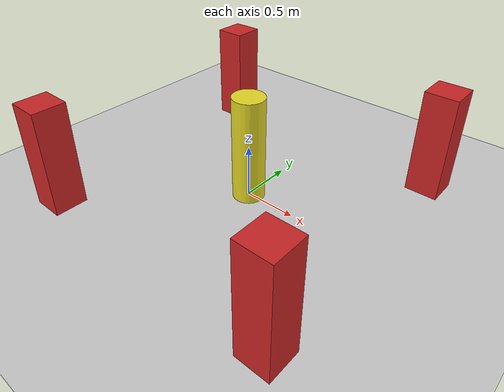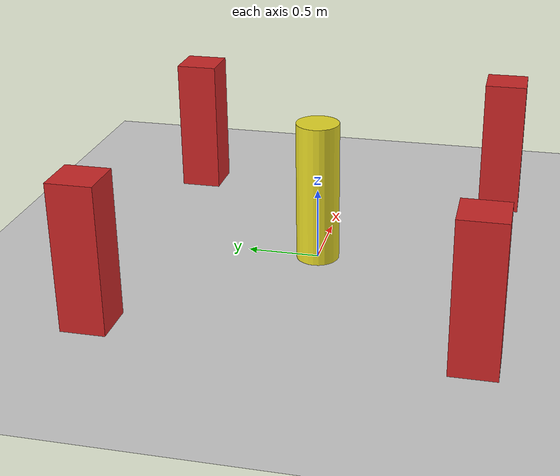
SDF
<?xml version="1.0" ?>
<sdf version="1.5">
  <world name="default">
    <include>
      <uri>model://sun</uri>
    </include>
    <include>
      <uri>model://ground_plane</uri>
    </include>

    <model name="center_pillar">
      <pose>0 0 0.5 0 0 0</pose>
      <static>true</static>
      <link name="link">
        <collision name="collision">
          <geometry>
            <cylinder>
              <radius>0.15</radius>
              <length>1.0</length>
            </cylinder>
          </geometry>
        </collision>
        <visual name="visual">
          <geometry>
            <cylinder>
              <radius>0.15</radius>
              <length>1.0</length>
            </cylinder>
          </geometry>
          <material>
            <script>
              <uri>file://media/materials/scripts/gazebo.material</uri>
              <name>Gazebo/Yellow</name>
            </script>
          </material>
        </visual>
      </link>
    </model>

    <model name="corner_1">
      <pose>1.2 1.2 0.5 0 0 0</pose>
      <static>true</static>
      <link name="link">
        <collision name="collision">
          <geometry> <box> <size>0.3 0.3 1.0</size> </box> </geometry>
        </collision>
        <visual name="visual">
          <geometry> <box> <size>0.3 0.3 1.0</size> </box> </geometry>
          <material>
            <script>
              <uri>file://media/materials/scripts/gazebo.material</uri>
              <name>Gazebo/Red</name>
            </script>
          </material>
        </visual>
      </link>
    </model>

    <model name="corner_2">
      <pose>-1.2 1.2 0.5 0 0 0</pose>
      <static>true</static>
      <link name="link">
        <collision name="collision">
          <geometry> <box> <size>0.3 0.3 1.0</size> </box> </geometry>
        </collision>
        <visual name="visual">
          <geometry> <box> <size>0.3 0.3 1.0</size> </box> </geometry>
          <material>
            <script>
              <uri>file://media/materials/scripts/gazebo.material</uri>
              <name>Gazebo/Red</name>
            </script>
          </material>
        </visual>
      </link>
    </model>

    <model name="corner_3">
      <pose>1.2 -1.2 0.5 0 0 0</pose>
      <static>true</static>
      <link name="link">
        <collision name="collision">
          <geometry> <box> <size>0.3 0.3 1.0</size> </box> </geometry>
        </collision>
        <visual name="visual">
          <geometry> <box> <size>0.3 0.3 1.0</size> </box> </geometry>
          <material>
            <script>
              <uri>file://media/materials/scripts/gazebo.material</uri>
              <name>Gazebo/Red</name>
            </script>
          </material>
        </visual>
      </link>
    </model>

    <model name="corner_4">
      <pose>-1.2 -1.2 0.5 0 0 0</pose>
      <static>true</static>
      <link name="link">
        <collision name="collision">
          <geometry> <box> <size>0.3 0.3 1.0</size> </box> </geometry>
        </collision>
        <visual name="visual">
          <geometry> <box> <size>0.3 0.3 1.0</size> </box> </geometry>
          <material>
            <script>
              <uri>file://media/materials/scripts/gazebo.material</uri>
              <name>Gazebo/Red</name>
            </script>
          </material>
        </visual>
      </link>
    </model>

  </world>
</sdf>
